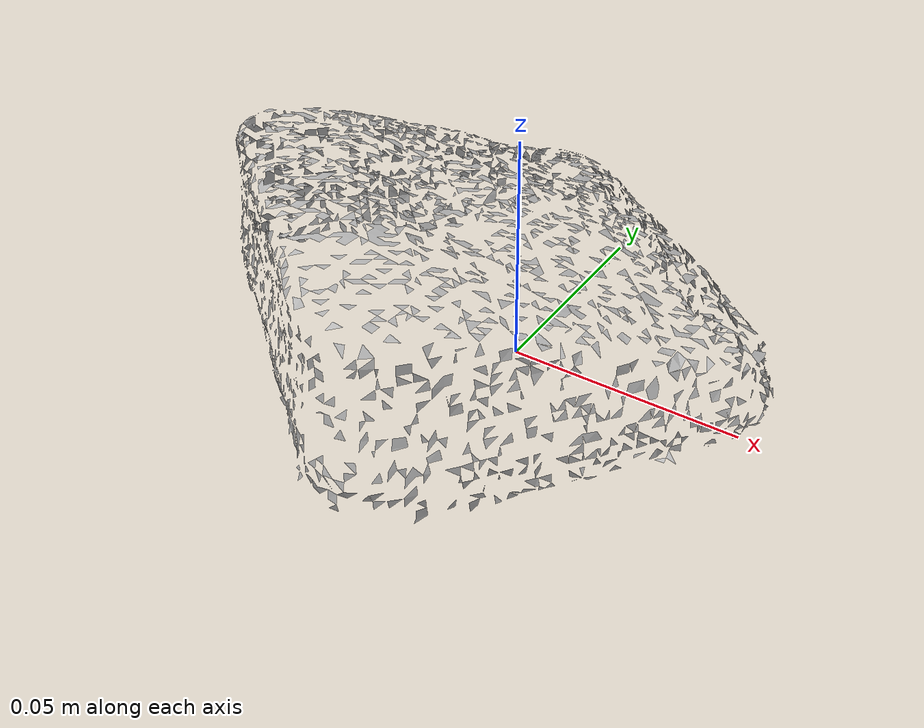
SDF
<?xml version='1.0'?>
<sdf version="1.4">
  <model name="timer">
    <static>false</static>
    <link name="link">
      <inertial>
        <pose>-0.008380210128086773 -0.01007806111086999 0.02309571069525015 1.6556263749894993 -1.4306219623776586 0.8011890136695218</pose>
        <mass>0.00022408566973574842</mass>
        <inertia>
          <ixx>2.742812455801343e-07</ixx>
          <ixy>-2.6166007574881648e-23</ixy>
          <ixz>1.6494164251839826e-23</ixz>
          <iyy>1.595269665450607e-07</iyy>
          <iyz>-3.978628266447819e-23</iyz>
          <izz>1.3453376377096777e-07</izz>
        </inertia>
      </inertial>
      <collision name="collision">
        <geometry>
          <mesh>
            <!-- Use a downsampled mesh for collisions -->
            <uri>model://076_timer/downsampled.obj</uri>
	        </mesh>
        </geometry>
        <surface>
      </surface>
      </collision>
      <visual name="visual">
        <geometry>
          <mesh>
            <uri>model://076_timer/tsdf/textured.obj</uri>
	        </mesh>
        </geometry>
        <material>
          <script>
            <uri>model://076_timer/timer.material</uri>
            <name>timer</name>
          </script>
        </material>
      </visual>
    </link>
  </model>
</sdf>
